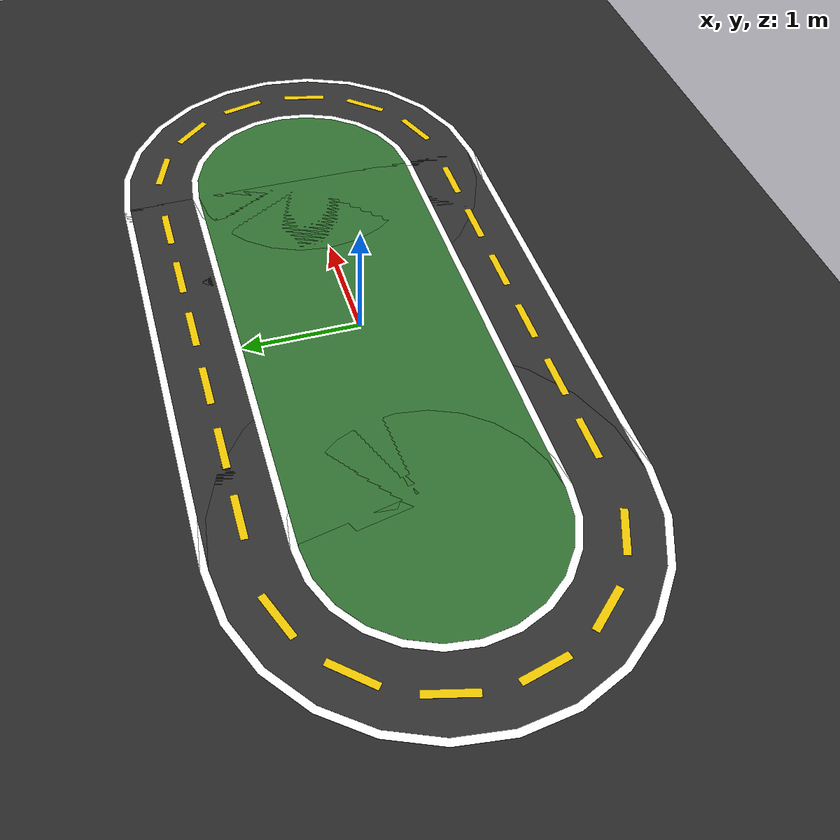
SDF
<?xml version="1.0" ?>
<sdf version="1.6">
  <world name="capsule_track">

    <include><uri>model://sun</uri></include>

    <!-- ─── Ground plane (dark asphalt) ─── -->
    <model name="ground_plane">
      <static>true</static>
      <link name="link">
        <collision name="collision">
          <geometry><plane><normal>0 0 1</normal><size>20 20</size></plane></geometry>
        </collision>
        <visual name="visual">
          <geometry><plane><normal>0 0 1</normal><size>20 20</size></plane></geometry>
          <material><ambient>0.15 0.15 0.15 1</ambient><diffuse>0.15 0.15 0.15 1</diffuse></material>
        </visual>
      </link>
    </model>

    <!-- ═══════ LAYER 1 — Outer white boundary  z = 0.001 ═══════ -->
    <model name="outer_white_left">
      <static>true</static><pose>-2.0 0 0.001 0 0 0</pose>
      <link name="link"><visual name="v">
        <geometry><cylinder><radius>1.70</radius><length>0.002</length></cylinder></geometry>
        <material><ambient>0.95 0.95 0.95 1</ambient><diffuse>0.95 0.95 0.95 1</diffuse></material>
      </visual></link>
    </model>

    <model name="outer_white_right">
      <static>true</static><pose>2.0 0 0.001 0 0 0</pose>
      <link name="link"><visual name="v">
        <geometry><cylinder><radius>1.70</radius><length>0.002</length></cylinder></geometry>
        <material><ambient>0.95 0.95 0.95 1</ambient><diffuse>0.95 0.95 0.95 1</diffuse></material>
      </visual></link>
    </model>

    <!-- box size = (straight_len=4.0, 2*outer_r=3.4, layer_h=0.002) -->
    <model name="outer_white_rect">
      <static>true</static><pose>0 0 0.001 0 0 0</pose>
      <link name="link"><visual name="v">
        <geometry><box><size>4.0 3.4 0.002</size></box></geometry>
        <material><ambient>0.95 0.95 0.95 1</ambient><diffuse>0.95 0.95 0.95 1</diffuse></material>
      </visual></link>
    </model>

    <!-- ═══════ LAYER 2 — Dark road surface  z = 0.002 ═══════ -->
    <!-- radius 1.64 = 1.70 − 0.06 (inner edge of outer white line) -->
    <model name="road_left">
      <static>true</static><pose>-2.0 0 0.002 0 0 0</pose>
      <link name="link"><visual name="v">
        <geometry><cylinder><radius>1.64</radius><length>0.002</length></cylinder></geometry>
        <material><ambient>0.18 0.18 0.18 1</ambient><diffuse>0.18 0.18 0.18 1</diffuse></material>
      </visual></link>
    </model>

    <model name="road_right">
      <static>true</static><pose>2.0 0 0.002 0 0 0</pose>
      <link name="link"><visual name="v">
        <geometry><cylinder><radius>1.64</radius><length>0.002</length></cylinder></geometry>
        <material><ambient>0.18 0.18 0.18 1</ambient><diffuse>0.18 0.18 0.18 1</diffuse></material>
      </visual></link>
    </model>

    <model name="road_rect">
      <static>true</static><pose>0 0 0.002 0 0 0</pose>
      <link name="link"><visual name="v">
        <geometry><box><size>4.0 3.28 0.002</size></box></geometry>
        <material><ambient>0.18 0.18 0.18 1</ambient><diffuse>0.18 0.18 0.18 1</diffuse></material>
      </visual></link>
    </model>

    <!-- ═══════ LAYER 3 — Inner white boundary  z = 0.003 ═══════ -->
    <!-- radius 1.06 = 1.00 + 0.06 (outer edge of inner white line) -->
    <model name="inner_white_left">
      <static>true</static><pose>-2.0 0 0.003 0 0 0</pose>
      <link name="link"><visual name="v">
        <geometry><cylinder><radius>1.06</radius><length>0.002</length></cylinder></geometry>
        <material><ambient>0.95 0.95 0.95 1</ambient><diffuse>0.95 0.95 0.95 1</diffuse></material>
      </visual></link>
    </model>

    <model name="inner_white_right">
      <static>true</static><pose>2.0 0 0.003 0 0 0</pose>
      <link name="link"><visual name="v">
        <geometry><cylinder><radius>1.06</radius><length>0.002</length></cylinder></geometry>
        <material><ambient>0.95 0.95 0.95 1</ambient><diffuse>0.95 0.95 0.95 1</diffuse></material>
      </visual></link>
    </model>

    <model name="inner_white_rect">
      <static>true</static><pose>0 0 0.003 0 0 0</pose>
      <link name="link"><visual name="v">
        <geometry><box><size>4.0 2.12 0.002</size></box></geometry>
        <material><ambient>0.95 0.95 0.95 1</ambient><diffuse>0.95 0.95 0.95 1</diffuse></material>
      </visual></link>
    </model>

    <!-- ═══════ LAYER 4 — Green inner island  z = 0.004 ═══════ -->
    <model name="island_left">
      <static>true</static><pose>-2.0 0 0.004 0 0 0</pose>
      <link name="link"><visual name="v">
        <geometry><cylinder><radius>1.0</radius><length>0.002</length></cylinder></geometry>
        <material><ambient>0.18 0.42 0.18 1</ambient><diffuse>0.18 0.42 0.18 1</diffuse></material>
      </visual></link>
    </model>

    <model name="island_right">
      <static>true</static><pose>2.0 0 0.004 0 0 0</pose>
      <link name="link"><visual name="v">
        <geometry><cylinder><radius>1.0</radius><length>0.002</length></cylinder></geometry>
        <material><ambient>0.18 0.42 0.18 1</ambient><diffuse>0.18 0.42 0.18 1</diffuse></material>
      </visual></link>
    </model>

    <model name="island_rect">
      <static>true</static><pose>0 0 0.004 0 0 0</pose>
      <link name="link"><visual name="v">
        <geometry><box><size>4.0 2.0 0.002</size></box></geometry>
        <material><ambient>0.18 0.42 0.18 1</ambient><diffuse>0.18 0.42 0.18 1</diffuse></material>
      </visual></link>
    </model>

    <!-- ── Top straight  (y = +1.35, yaw = 0) ── -->
    <model name="dash_ts_1"><static>true</static><pose>-1.625  1.35 0.005 0 0 0</pose><link name="link"><visual name="v"><geometry><box><size>0.4 0.06 0.002</size></box></geometry><material><ambient>0.9 0.75 0.0 1</ambient><diffuse>0.9 0.75 0.0 1</diffuse></material></visual></link></model>
    <model name="dash_ts_2"><static>true</static><pose>-0.975  1.35 0.005 0 0 0</pose><link name="link"><visual name="v"><geometry><box><size>0.4 0.06 0.002</size></box></geometry><material><ambient>0.9 0.75 0.0 1</ambient><diffuse>0.9 0.75 0.0 1</diffuse></material></visual></link></model>
    <model name="dash_ts_3"><static>true</static><pose>-0.325  1.35 0.005 0 0 0</pose><link name="link"><visual name="v"><geometry><box><size>0.4 0.06 0.002</size></box></geometry><material><ambient>0.9 0.75 0.0 1</ambient><diffuse>0.9 0.75 0.0 1</diffuse></material></visual></link></model>
    <model name="dash_ts_4"><static>true</static><pose> 0.325  1.35 0.005 0 0 0</pose><link name="link"><visual name="v"><geometry><box><size>0.4 0.06 0.002</size></box></geometry><material><ambient>0.9 0.75 0.0 1</ambient><diffuse>0.9 0.75 0.0 1</diffuse></material></visual></link></model>
    <model name="dash_ts_5"><static>true</static><pose> 0.975  1.35 0.005 0 0 0</pose><link name="link"><visual name="v"><geometry><box><size>0.4 0.06 0.002</size></box></geometry><material><ambient>0.9 0.75 0.0 1</ambient><diffuse>0.9 0.75 0.0 1</diffuse></material></visual></link></model>
    <model name="dash_ts_6"><static>true</static><pose> 1.625  1.35 0.005 0 0 0</pose><link name="link"><visual name="v"><geometry><box><size>0.4 0.06 0.002</size></box></geometry><material><ambient>0.9 0.75 0.0 1</ambient><diffuse>0.9 0.75 0.0 1</diffuse></material></visual></link></model>

    <!-- ── Bottom straight  (y = −1.35, yaw = 0) ── -->
    <model name="dash_bs_1"><static>true</static><pose>-1.625 -1.35 0.005 0 0 0</pose><link name="link"><visual name="v"><geometry><box><size>0.4 0.06 0.002</size></box></geometry><material><ambient>0.9 0.75 0.0 1</ambient><diffuse>0.9 0.75 0.0 1</diffuse></material></visual></link></model>
    <model name="dash_bs_2"><static>true</static><pose>-0.975 -1.35 0.005 0 0 0</pose><link name="link"><visual name="v"><geometry><box><size>0.4 0.06 0.002</size></box></geometry><material><ambient>0.9 0.75 0.0 1</ambient><diffuse>0.9 0.75 0.0 1</diffuse></material></visual></link></model>
    <model name="dash_bs_3"><static>true</static><pose>-0.325 -1.35 0.005 0 0 0</pose><link name="link"><visual name="v"><geometry><box><size>0.4 0.06 0.002</size></box></geometry><material><ambient>0.9 0.75 0.0 1</ambient><diffuse>0.9 0.75 0.0 1</diffuse></material></visual></link></model>
    <model name="dash_bs_4"><static>true</static><pose> 0.325 -1.35 0.005 0 0 0</pose><link name="link"><visual name="v"><geometry><box><size>0.4 0.06 0.002</size></box></geometry><material><ambient>0.9 0.75 0.0 1</ambient><diffuse>0.9 0.75 0.0 1</diffuse></material></visual></link></model>
    <model name="dash_bs_5"><static>true</static><pose> 0.975 -1.35 0.005 0 0 0</pose><link name="link"><visual name="v"><geometry><box><size>0.4 0.06 0.002</size></box></geometry><material><ambient>0.9 0.75 0.0 1</ambient><diffuse>0.9 0.75 0.0 1</diffuse></material></visual></link></model>
    <model name="dash_bs_6"><static>true</static><pose> 1.625 -1.35 0.005 0 0 0</pose><link name="link"><visual name="v"><geometry><box><size>0.4 0.06 0.002</size></box></geometry><material><ambient>0.9 0.75 0.0 1</ambient><diffuse>0.9 0.75 0.0 1</diffuse></material></visual></link></model>

    <model name="dash_rc_1"><static>true</static><pose> 2.479 -1.262 0.005 0 0 0.367</pose><link name="link"><visual name="v"><geometry><box><size>0.4 0.06 0.002</size></box></geometry><material><ambient>0.9 0.75 0.0 1</ambient><diffuse>0.9 0.75 0.0 1</diffuse></material></visual></link></model>
    <model name="dash_rc_2"><static>true</static><pose> 3.016 -0.889 0.005 0 0 0.849</pose><link name="link"><visual name="v"><geometry><box><size>0.4 0.06 0.002</size></box></geometry><material><ambient>0.9 0.75 0.0 1</ambient><diffuse>0.9 0.75 0.0 1</diffuse></material></visual></link></model>
    <model name="dash_rc_3"><static>true</static><pose> 3.311 -0.322 0.005 0 0 1.330</pose><link name="link"><visual name="v"><geometry><box><size>0.4 0.06 0.002</size></box></geometry><material><ambient>0.9 0.75 0.0 1</ambient><diffuse>0.9 0.75 0.0 1</diffuse></material></visual></link></model>
    <model name="dash_rc_4"><static>true</static><pose> 3.311  0.322 0.005 0 0 1.812</pose><link name="link"><visual name="v"><geometry><box><size>0.4 0.06 0.002</size></box></geometry><material><ambient>0.9 0.75 0.0 1</ambient><diffuse>0.9 0.75 0.0 1</diffuse></material></visual></link></model>
    <model name="dash_rc_5"><static>true</static><pose> 3.016  0.889 0.005 0 0 2.293</pose><link name="link"><visual name="v"><geometry><box><size>0.4 0.06 0.002</size></box></geometry><material><ambient>0.9 0.75 0.0 1</ambient><diffuse>0.9 0.75 0.0 1</diffuse></material></visual></link></model>
    <model name="dash_rc_6"><static>true</static><pose> 2.479  1.262 0.005 0 0 2.775</pose><link name="link"><visual name="v"><geometry><box><size>0.4 0.06 0.002</size></box></geometry><material><ambient>0.9 0.75 0.0 1</ambient><diffuse>0.9 0.75 0.0 1</diffuse></material></visual></link></model>

    <model name="dash_lc_1"><static>true</static><pose>-2.479  1.262 0.005 0 0 3.509</pose><link name="link"><visual name="v"><geometry><box><size>0.4 0.06 0.002</size></box></geometry><material><ambient>0.9 0.75 0.0 1</ambient><diffuse>0.9 0.75 0.0 1</diffuse></material></visual></link></model>
    <model name="dash_lc_2"><static>true</static><pose>-3.016  0.889 0.005 0 0 3.990</pose><link name="link"><visual name="v"><geometry><box><size>0.4 0.06 0.002</size></box></geometry><material><ambient>0.9 0.75 0.0 1</ambient><diffuse>0.9 0.75 0.0 1</diffuse></material></visual></link></model>
    <model name="dash_lc_3"><static>true</static><pose>-3.311  0.322 0.005 0 0 4.472</pose><link name="link"><visual name="v"><geometry><box><size>0.4 0.06 0.002</size></box></geometry><material><ambient>0.9 0.75 0.0 1</ambient><diffuse>0.9 0.75 0.0 1</diffuse></material></visual></link></model>
    <model name="dash_lc_4"><static>true</static><pose>-3.311 -0.322 0.005 0 0 4.953</pose><link name="link"><visual name="v"><geometry><box><size>0.4 0.06 0.002</size></box></geometry><material><ambient>0.9 0.75 0.0 1</ambient><diffuse>0.9 0.75 0.0 1</diffuse></material></visual></link></model>
    <model name="dash_lc_5"><static>true</static><pose>-3.016 -0.889 0.005 0 0 5.435</pose><link name="link"><visual name="v"><geometry><box><size>0.4 0.06 0.002</size></box></geometry><material><ambient>0.9 0.75 0.0 1</ambient><diffuse>0.9 0.75 0.0 1</diffuse></material></visual></link></model>
    <model name="dash_lc_6"><static>true</static><pose>-2.479 -1.262 0.005 0 0 5.916</pose><link name="link"><visual name="v"><geometry><box><size>0.4 0.06 0.002</size></box></geometry><material><ambient>0.9 0.75 0.0 1</ambient><diffuse>0.9 0.75 0.0 1</diffuse></material></visual></link></model>

    <physics name="default_physics" default="0" type="ode">
      <gravity>0 0 -9.8</gravity>
      <ode><solver><type>quick</type><iters>10</iters></solver></ode>
    </physics>

  </world>
</sdf>
